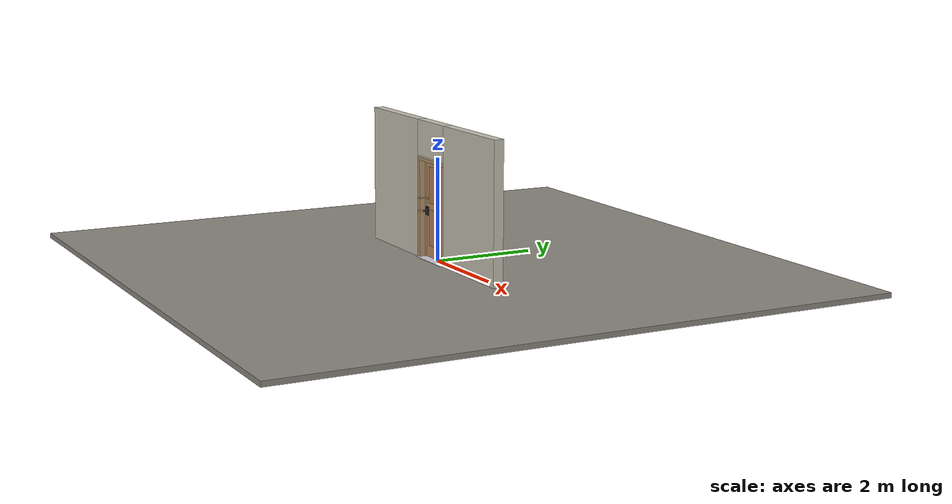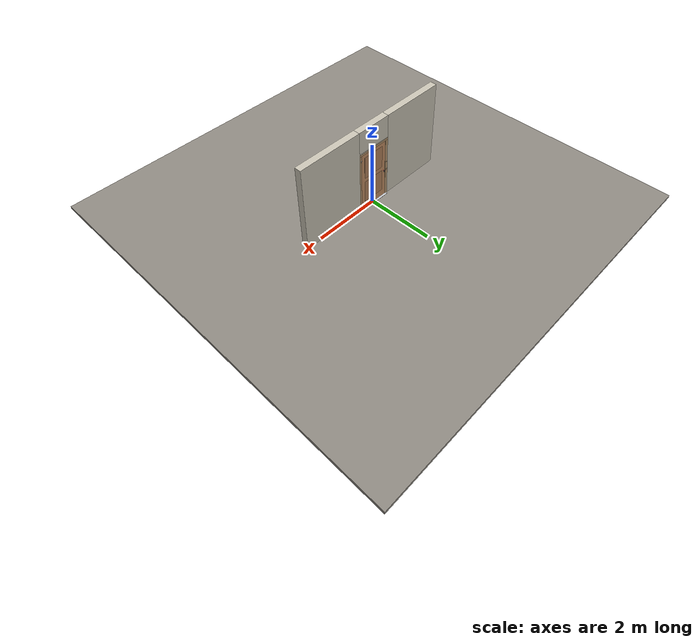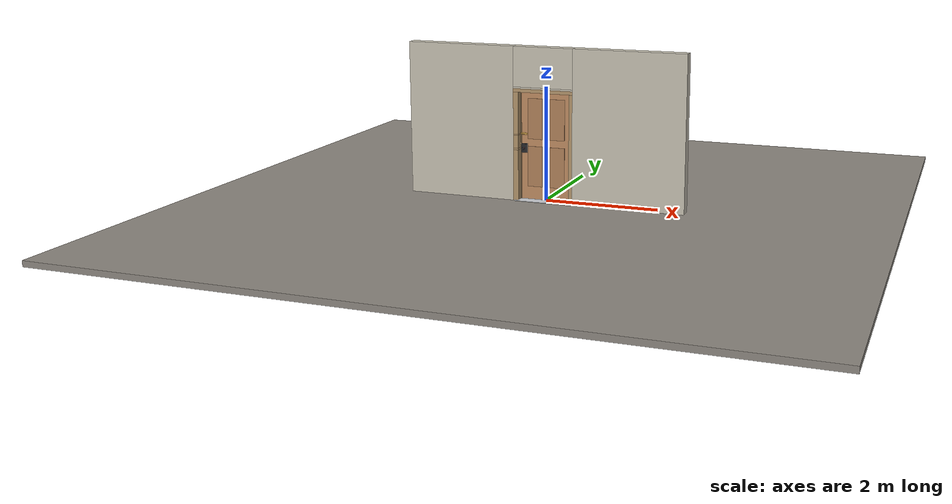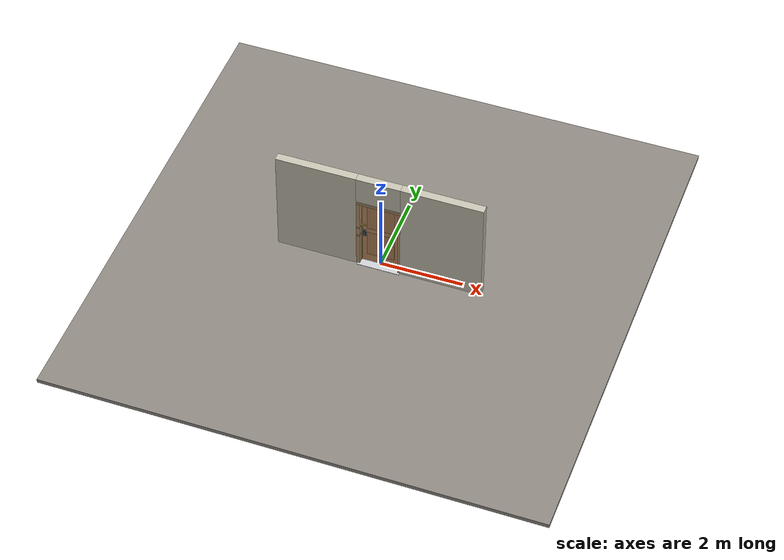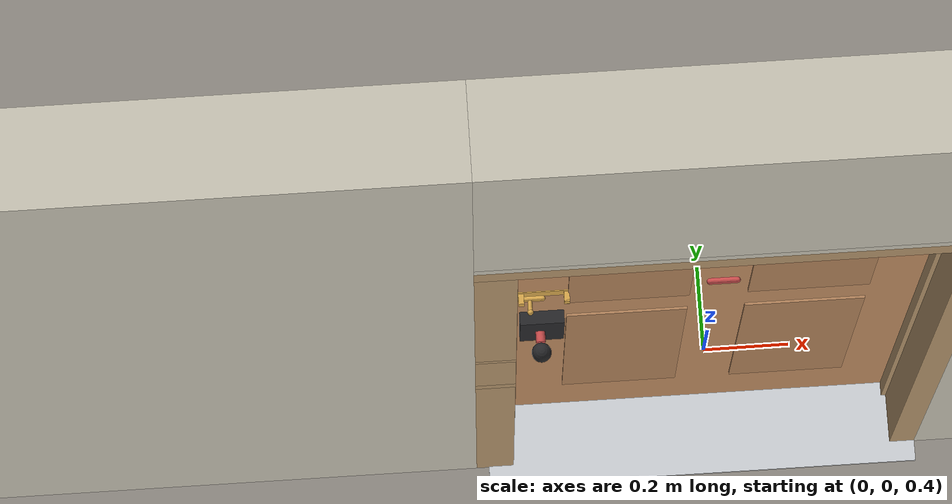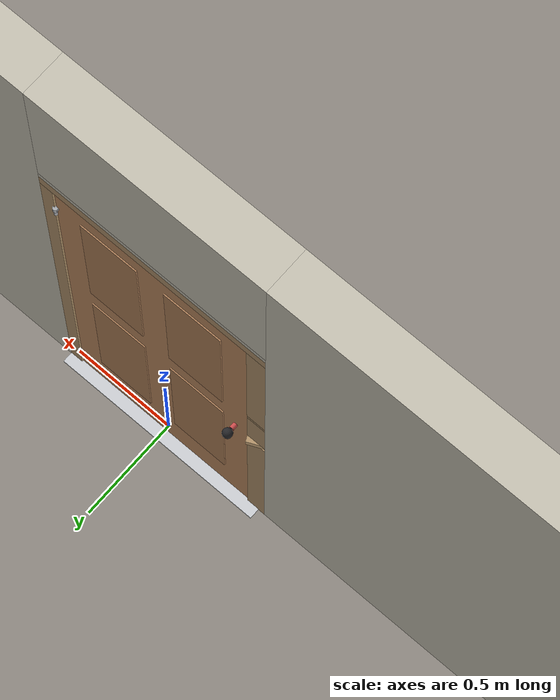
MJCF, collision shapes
<?xml version="1.0" ?>
<mujoco model="db0135_swing_single_full">
  <compiler angle="radian" meshdir="../../hardware" texturedir="../../textures" autolimits="true" inertiafromgeom="false"/>
  <option timestep="0.002" integrator="implicitfast" cone="elliptic" impratio="10" noslip_iterations="3">
    <flag multiccd="enable"/>
  </option>
  <size memory="16M"/>
  <default>
    <geom condim="4" solref="0.005 1" solimp="0.95 0.99 0.001"/>
    <joint solreflimit="0.005 1" solimplimit="0.95 0.99 0.001"/>
    <tendon solreflimit="0.005 1"/>
    <equality solref="0.002 1"/>
  </default>
  <visual>
    <headlight ambient="0.4 0.4 0.4" diffuse="0.7 0.7 0.7" specular="0.2 0.2 0.2"/>
    <quality shadowsize="4096"/>
    <map znear="0.01" zfar="60"/>
  </visual>
  <asset>
    <mesh name="knob_3926f4c53b" file="knob_3926f4c53b.obj"/>
    <mesh name="knocker_a8f2ce0ad7" file="knocker_a8f2ce0ad7.obj"/>
    <mesh name="strap_hinge_78d1bbb966" file="strap_hinge_78d1bbb966.obj"/>
    <material name="mat_floor" rgba="0.55 0.53 0.5 1" specular="0.2" shininess="0.15" reflectance="0"/>
    <material name="mat_wall" rgba="0.78 0.76 0.7 1" specular="0.2" shininess="0.1" reflectance="0"/>
    <material name="mat_leaf" rgba="0.75 0.55 0.38 1" specular="0.2" shininess="0.45" reflectance="0"/>
    <material name="mat_leaf_panel" rgba="0.69 0.506 0.35 1" specular="0.2" shininess="0.45" reflectance="0"/>
    <material name="mat_hinge" rgba="0.65 0.66 0.68 1" specular="0.74" shininess="0.5" reflectance="0.36"/>
    <material name="mat_op_cast_iron" rgba="0.15 0.15 0.16 1" specular="0.5" shininess="0.2" reflectance="0.2"/>
    <material name="mat_rim_case" rgba="0.15 0.15 0.16 1" specular="0.5" shininess="0.2" reflectance="0.2"/>
    <material name="mat_trim" rgba="0.85 0.66 0.3 1" specular="0.8" shininess="0.75" reflectance="0.4"/>
    <material name="mat_bolt" rgba="0.85 0.66 0.3 1" specular="0.8" shininess="0.75" reflectance="0.4"/>
    <material name="mat_op_brass" rgba="0.85 0.66 0.3 1" specular="0.8" shininess="0.75" reflectance="0.4"/>
    <material name="mat_frame" rgba="0.7 0.58 0.42 1" specular="0.2" shininess="0.5" reflectance="0"/>
    <material name="mat_threshold" rgba="0.8 0.81 0.83 1" specular="0.8" shininess="0.6" reflectance="0.4"/>
    <material name="mat_knocker" rgba="0.55 0.42 0.22 1" specular="0.74" shininess="0.45" reflectance="0.36"/>
    <texture name="skybox" type="skybox" builtin="gradient" rgb1="0.6 0.7 0.85" rgb2="0.9 0.92 0.95" width="256" height="256"/>
  </asset>
  <worldbody>
    <light name="sun" pos="1.5 -2.5 4" dir="-0.3 0.5 -0.8" directional="true" diffuse="0.8 0.8 0.8" specular="0.3 0.3 0.3" castshadow="true"/>
    <light name="fill" pos="-1.5 2.5 3" dir="0.3 -0.5 -0.7" directional="true" diffuse="0.35 0.35 0.4" castshadow="false"/>
    <camera name="robot_view" pos="0 -2.489438 1.633663" xyaxes="1 0 0 0 0.26963 0.962964" fovy="52"/>
    <camera name="far_view" pos="0 2.347437 1.633663" xyaxes="-1 0 0 0 -0.26963 0.962964" fovy="52"/>
    <camera name="iso" pos="-1.838012 -2.102488 2.020612" xyaxes="0.741536 -0.670913 0 0.242917 0.268487 0.932151" fovy="46"/>
    <camera name="detail_handle" pos="-0.2165 -0.8995 1.194" xyaxes="0.97561 0.219512 0 -0.070934 0.315262 0.94635" fovy="38"/>
    <geom name="floor" type="box" size="6 6 0.05" pos="0 0 -0.05" material="mat_floor" group="0" contype="1" conaffinity="1" friction="0.8 0.005 0.0001" density="2400"/>
    <geom name="wall_left" type="box" size="0.97475 0.1 1.35" pos="-1.52525 -0.071 1.35" material="mat_wall" group="0" contype="1" conaffinity="1" friction="0.6 0.005 0.0001" density="800"/>
    <geom name="wall_right" type="box" size="0.98975 0.1 1.35" pos="1.51025 -0.071 1.35" material="mat_wall" group="0" contype="1" conaffinity="1" friction="0.6 0.005 0.0001" density="800"/>
    <geom name="wall_header" type="box" size="0.5355 0.1 0.3485" pos="-0.015 -0.071 2.3515" material="mat_wall" group="0" contype="1" conaffinity="1" friction="0.6 0.005 0.0001" density="800"/>
    <geom name="hinge_pintle_0" type="cylinder" size="0.008 0.02" pos="0.4575 0.029 0.133" material="mat_hinge" group="1" contype="0" conaffinity="0" density="7850"/>
    <geom name="hinge_pintle_1" type="cylinder" size="0.008 0.02" pos="0.4575 0.029 1.733" material="mat_hinge" group="1" contype="0" conaffinity="0" density="7850"/>
    <geom name="leaf_aux_bolt_keeper_b" type="box" size="0.014 0.003 0.0005" pos="-0.46 -0.034 1.151" quat="0.5 0.5 0.5 0.5" material="mat_op_brass" group="1" contype="0" conaffinity="0" density="7800"/>
    <geom name="leaf_aux_bolt_keeper_l" type="box" size="0.003 0.01 0.0005" pos="-0.46 -0.045 1.164" quat="0.5 0.5 0.5 0.5" material="mat_op_brass" group="1" contype="0" conaffinity="0" density="7800"/>
    <geom name="leaf_aux_bolt_keeper_t" type="box" size="0.014 0.003 0.0005" pos="-0.46 -0.034 1.177" quat="0.5 0.5 0.5 0.5" material="mat_op_brass" group="1" contype="0" conaffinity="0" density="7800"/>
    <geom name="leaf_aux_bolt_keeper_r" type="box" size="0.003 0.01 0.0005" pos="-0.46 -0.023 1.164" quat="0.5 0.5 0.5 0.5" material="mat_op_brass" group="1" contype="0" conaffinity="0" density="7800"/>
    <geom name="jamb_hinge" type="box" size="0.03 0.1 0.9565" pos="0.4905 -0.071 0.9565" material="mat_frame" group="0" contype="1" conaffinity="1" friction="0.6 0.005 0.0001" density="750"/>
    <geom name="strike_914_wall_n" type="box" size="0.045 0.081575 0.0167" pos="-0.5055 -0.089425 0.914" material="mat_frame" group="0" contype="1" conaffinity="1" friction="0.6 0.005 0.0001" density="750"/>
    <geom name="strike_914_wall_p" type="box" size="0.045 0.008 0.0167" pos="-0.5055 0.01585 0.914" material="mat_frame" group="0" contype="1" conaffinity="1" friction="0.6 0.005 0.0001" density="750"/>
    <geom name="strike_914_ramp" type="box" size="0.045 0.01649 0.0167" pos="-0.508284 0.020157 0.914" quat="0.977148 0 0 0.212558" material="mat_frame" group="0" contype="1" conaffinity="1" friction="0.12 0.005 0.0001" density="750"/>
    <geom name="strike_914_back" type="box" size="0.03665 0.00785 0.0167" pos="-0.51385 0 0.914" material="mat_frame" group="0" contype="1" conaffinity="1" friction="0.6 0.005 0.0001" density="750"/>
    <geom name="strike_1164_wall_n" type="box" size="0.045 0.0645 0.01" pos="-0.5055 -0.1065 1.164" material="mat_frame" group="0" contype="1" conaffinity="1" friction="0.6 0.005 0.0001" density="750"/>
    <geom name="strike_1164_wall_p" type="box" size="0.045 0.0275 0.01" pos="-0.5055 0.0015 1.164" material="mat_frame" group="0" contype="1" conaffinity="1" friction="0.6 0.005 0.0001" density="750"/>
    <geom name="strike_1164_back" type="box" size="0.024 0.008 0.01" pos="-0.5265 -0.034 1.164" material="mat_frame" group="0" contype="1" conaffinity="1" friction="0.6 0.005 0.0001" density="750"/>
    <geom name="jamb_strike_0" type="box" size="0.045 0.1 0.44865" pos="-0.5055 -0.071 0.44865" material="mat_frame" group="0" contype="1" conaffinity="1" friction="0.6 0.005 0.0001" density="750"/>
    <geom name="jamb_strike_1" type="box" size="0.045 0.1 0.11165" pos="-0.5055 -0.071 1.04235" material="mat_frame" group="0" contype="1" conaffinity="1" friction="0.6 0.005 0.0001" density="750"/>
    <geom name="jamb_strike_2" type="box" size="0.045 0.1 0.3695" pos="-0.5055 -0.071 1.5435" material="mat_frame" group="0" contype="1" conaffinity="1" friction="0.6 0.005 0.0001" density="750"/>
    <geom name="jamb_head" type="box" size="0.5355 0.1 0.03" pos="-0.015 -0.071 1.943" material="mat_frame" group="0" contype="1" conaffinity="1" friction="0.6 0.005 0.0001" density="750"/>
    <geom name="head_stud" type="box" size="0.5355 0.1 0.015" pos="-0.015 -0.071 1.988" material="mat_wall" group="0" contype="1" conaffinity="1" friction="0.6 0.005 0.0001" density="500"/>
    <geom name="stop_hinge" type="box" size="0.0055 0.016 0.9565" pos="0.455 -0.0385 0.9565" material="mat_frame" group="0" contype="1" conaffinity="1" friction="0.6 0.005 0.0001" density="750"/>
    <geom name="stop_strike" type="box" size="0.0055 0.016 0.571" pos="-0.455 -0.0385 0.571" material="mat_frame" group="0" contype="1" conaffinity="1" friction="0.6 0.005 0.0001" density="750"/>
    <geom name="stop_strike_1" type="box" size="0.0055 0.016 0.3635" pos="-0.455 -0.0385 1.5495" material="mat_frame" group="0" contype="1" conaffinity="1" friction="0.6 0.005 0.0001" density="750"/>
    <geom name="stop_head" type="box" size="0.4605 0.016 0.0055" pos="0 -0.0385 1.9075" material="mat_frame" group="0" contype="1" conaffinity="1" friction="0.6 0.005 0.0001" density="750"/>
    <geom name="threshold" type="box" size="0.5205 0.15 0.004" pos="0 -0.071 0.004" material="mat_threshold" group="0" contype="1" conaffinity="1" friction="0.6 0.005 0.0001" density="2700"/>
    <geom name="hinge_pintle_0_strap_0" type="box" size="0.0064 0.02225 0.016" pos="0.4575 -0.00075 0.133" material="mat_hinge" group="1" contype="0" conaffinity="0" density="7850"/>
    <geom name="hinge_pintle_1_strap_0" type="box" size="0.0064 0.02225 0.016" pos="0.4575 -0.00075 1.733" material="mat_hinge" group="1" contype="0" conaffinity="0" density="7850"/>
    <site name="approach_point" pos="0 -1.5 0" quat="1 0 0 0" size="0.05" rgba="0.2 0.9 0.2 0.5" group="4"/>
    <site name="goal_point" pos="0 1.5 0" quat="1 0 0 0" size="0.05" rgba="0.2 0.9 0.2 0.5" group="4"/>
    <site name="door_plane_center" pos="0 0 0.9565" quat="1 0 0 0" size="0.02" rgba="0.2 0.9 0.2 0.5" group="4"/>
    <body name="leaf" pos="0.4605 0 0">
      <inertial pos="-0.457637 0.000044 0.958339" mass="40.443548" quat="0.497517 0.503045 -0.496894 0.502513" diaginertia="3.013329893 12.440105045 15.436080666"/>
      <joint name="leaf_hinge" type="hinge" axis="0 0 -1" pos="-0.003 0.029 0" limited="true" range="0 1.745329" damping="0.289473" frictionloss="4.001938" armature="0.02"/>
      <geom name="leaf_slab" type="box" size="0.457 0.022 0.95" pos="-0.46 0 0.959" material="mat_leaf" group="0" contype="1" conaffinity="1" friction="0.35 0.005 0.0001" density="1"/>
      <geom name="leaf_panel_0_n" type="box" size="0.13573 0.003 0.3565" pos="-0.25927 -0.025 0.5945" material="mat_leaf_panel" group="1" contype="0" conaffinity="0" density="1"/>
      <geom name="leaf_panel_0_p" type="box" size="0.13573 0.003 0.3565" pos="-0.25927 0.025 0.5945" material="mat_leaf_panel" group="1" contype="0" conaffinity="0" density="1"/>
      <geom name="leaf_panel_1_n" type="box" size="0.13573 0.003 0.3565" pos="-0.66073 -0.025 0.5945" material="mat_leaf_panel" group="1" contype="0" conaffinity="0" density="1"/>
      <geom name="leaf_panel_1_p" type="box" size="0.13573 0.003 0.3565" pos="-0.66073 0.025 0.5945" material="mat_leaf_panel" group="1" contype="0" conaffinity="0" density="1"/>
      <geom name="leaf_panel_2_n" type="box" size="0.13573 0.003 0.3565" pos="-0.25927 -0.025 1.4375" material="mat_leaf_panel" group="1" contype="0" conaffinity="0" density="1"/>
      <geom name="leaf_panel_2_p" type="box" size="0.13573 0.003 0.3565" pos="-0.25927 0.025 1.4375" material="mat_leaf_panel" group="1" contype="0" conaffinity="0" density="1"/>
      <geom name="leaf_panel_3_n" type="box" size="0.13573 0.003 0.3565" pos="-0.66073 -0.025 1.4375" material="mat_leaf_panel" group="1" contype="0" conaffinity="0" density="1"/>
      <geom name="leaf_panel_3_p" type="box" size="0.13573 0.003 0.3565" pos="-0.66073 0.025 1.4375" material="mat_leaf_panel" group="1" contype="0" conaffinity="0" density="1"/>
      <geom name="hinge_strap_0" type="mesh" mesh="strap_hinge_78d1bbb966" pos="-0.003 0.025 0.159" quat="0 0 0 1" material="mat_hinge" group="1" contype="0" conaffinity="0" density="7850"/>
      <geom name="hinge_strap_eye_0" type="cylinder" size="0.011 0.012" pos="-0.003 0.029 0.159" material="mat_hinge" group="1" contype="0" conaffinity="0" density="7850"/>
      <geom name="hinge_strap_neck_0" type="box" size="0.012 0.006 0.006" pos="-0.003 0.027 0.159" material="mat_hinge" group="1" contype="0" conaffinity="0" density="7850"/>
      <geom name="hinge_strap_1" type="mesh" mesh="strap_hinge_78d1bbb966" pos="-0.003 0.025 1.759" quat="0 0 0 1" material="mat_hinge" group="1" contype="0" conaffinity="0" density="7850"/>
      <geom name="hinge_strap_eye_1" type="cylinder" size="0.011 0.012" pos="-0.003 0.029 1.759" material="mat_hinge" group="1" contype="0" conaffinity="0" density="7850"/>
      <geom name="hinge_strap_neck_1" type="box" size="0.012 0.006 0.006" pos="-0.003 0.027 1.759" material="mat_hinge" group="1" contype="0" conaffinity="0" density="7850"/>
      <geom name="leaf_handle_rim_case" type="box" size="0.05 0.015 0.08" pos="-0.853 -0.037 0.914" material="mat_rim_case" group="0" contype="1" conaffinity="1" friction="0.6 0.005 0.0001" density="2500"/>
      <geom name="leaf_latch_bolt_faceplate" type="box" size="0.0006 0.01235 0.0267" pos="-0.9164 0 0.914" material="mat_bolt" group="1" contype="0" conaffinity="0" density="8500"/>
      <geom name="leaf_aux_bolt_plate" type="box" size="0.0595 0.019 0.001" pos="-0.8495 -0.023 1.164" quat="0 0 -0.707107 0.707107" material="mat_op_brass" group="1" contype="0" conaffinity="0" density="7800"/>
      <geom name="leaf_aux_bolt_guide_0_leg_n" type="box" size="0.006 0.002 0.0125" pos="-0.901 -0.0345 1.175" quat="0 0 -0.707107 0.707107" material="mat_op_brass" group="1" contype="0" conaffinity="0" density="7800"/>
      <geom name="leaf_aux_bolt_guide_0_leg_p" type="box" size="0.006 0.002 0.0125" pos="-0.901 -0.0345 1.153" quat="0 0 -0.707107 0.707107" material="mat_op_brass" group="1" contype="0" conaffinity="0" density="7800"/>
      <geom name="leaf_aux_bolt_guide_0_bridge" type="box" size="0.006 0.013 0.002" pos="-0.901 -0.045 1.164" quat="0 0 -0.707107 0.707107" material="mat_op_brass" group="1" contype="0" conaffinity="0" density="7800"/>
      <geom name="leaf_aux_bolt_guide_1_leg_n" type="box" size="0.006 0.002 0.0125" pos="-0.8 -0.0345 1.175" quat="0 0 -0.707107 0.707107" material="mat_op_brass" group="1" contype="0" conaffinity="0" density="7800"/>
      <geom name="leaf_aux_bolt_guide_1_leg_p" type="box" size="0.006 0.002 0.0125" pos="-0.8 -0.0345 1.153" quat="0 0 -0.707107 0.707107" material="mat_op_brass" group="1" contype="0" conaffinity="0" density="7800"/>
      <geom name="leaf_aux_bolt_guide_1_bridge" type="box" size="0.006 0.013 0.002" pos="-0.8 -0.045 1.164" quat="0 0 -0.707107 0.707107" material="mat_op_brass" group="1" contype="0" conaffinity="0" density="7800"/>
      <site name="leaf_edge_mid" pos="-0.917 0 0.95" quat="1 0 0 0" size="0.02" rgba="0.2 0.9 0.2 0.5" group="4"/>
      <body name="leaf_handle" pos="-0.857 0 0.914">
        <inertial pos="0 -0.013365 0" mass="0.977592" quat="0.5 0.5 0.5 0.5" diaginertia="0.000192203 0.005356868 0.005356868"/>
        <joint name="leaf_handle_hinge" type="hinge" axis="0 1 0" limited="true" range="0 0.85" damping="0.156401" frictionloss="0.052" stiffness="0.6" springref="-0.5" armature="0.01"/>
        <geom name="leaf_handle_spindle" type="cylinder" size="0.006 0.06" pos="0 0 0" quat="0.707107 -0.707107 0 0" material="mat_op_cast_iron" group="1" contype="0" conaffinity="0" density="7850"/>
        <geom name="leaf_handle_knob_n" type="mesh" mesh="knob_3926f4c53b" pos="0 -0.052 0" quat="0 0 -0.707107 0.707107" material="mat_op_cast_iron" group="1" contype="0" conaffinity="0" density="3000"/>
        <geom name="leaf_handle_knob_col_n" type="sphere" size="0.0225" pos="0 -0.0995 0" material="mat_op_cast_iron" group="0" contype="1" conaffinity="1" friction="0.9 0.01 0.0001" density="3000"/>
        <geom name="leaf_handle_knob_neck_n" type="cylinder" size="0.011 0.012" pos="0 -0.064 0" quat="0.707107 -0.707107 0 0" material="mat_op_cast_iron" group="3" contype="1" conaffinity="1" rgba="0.8 0.3 0.3 0.25" friction="0.6 0.005 0.0001" density="3000"/>
        <geom name="leaf_handle_knob_p" type="mesh" mesh="knob_3926f4c53b" pos="0 0.022 0" quat="0 0 0.707107 0.707107" material="mat_op_cast_iron" group="1" contype="0" conaffinity="0" density="3000"/>
        <geom name="leaf_handle_knob_col_p" type="sphere" size="0.0225" pos="0 0.0695 0" material="mat_op_cast_iron" group="0" contype="1" conaffinity="1" friction="0.9 0.01 0.0001" density="3000"/>
        <geom name="leaf_handle_knob_neck_p" type="cylinder" size="0.011 0.012" pos="0 0.034 0" quat="0.707107 -0.707107 0 0" material="mat_op_cast_iron" group="3" contype="1" conaffinity="1" rgba="0.8 0.3 0.3 0.25" friction="0.6 0.005 0.0001" density="3000"/>
        <site name="leaf_handle_grip_n" pos="0 -0.0995 0" quat="1 0 0 0" size="0.012" rgba="0.2 0.9 0.2 0.5" group="4"/>
        <site name="leaf_handle_grip_p" pos="0 0.0695 0" quat="1 0 0 0" size="0.012" rgba="0.2 0.9 0.2 0.5" group="4"/>
      </body>
      <body name="leaf_latch_bolt" pos="-0.917 0 0.914">
        <inertial pos="0.00865 0 0" mass="0.041419" quat="0.92388 0.382683 0 0" diaginertia="0.000000798 0.000005598 0.000005598"/>
        <joint name="leaf_latch_bolt_slide" type="slide" axis="1 0 0" limited="true" range="0 0.0127" damping="2" frictionloss="0.3" stiffness="300" springref="-0.008333" armature="0.1"/>
        <geom name="leaf_latch_bolt_capsule" type="capsule" size="0.00635 0.015" pos="0.00865 0 0" quat="0.707107 0 -0.707107 0" material="mat_bolt" group="0" contype="1" conaffinity="1" friction="0.2 0.005 0.0001" density="8500"/>
      </body>
      <body name="leaf_aux_bolt" pos="-0.917 -0.034 1.164">
        <inertial pos="0.023563 -0.00492 0" mass="0.111784" quat="0.998595 0 0 -0.05299" diaginertia="0.000012212 0.000071985 0.000082309"/>
        <joint name="leaf_aux_bolt_slide" type="slide" axis="1 0 0" limited="true" range="0 0.045" damping="1" frictionloss="1" armature="0.1"/>
        <geom name="leaf_aux_bolt_rod" type="capsule" size="0.006 0.044" pos="0.02 0 0" quat="0.707107 0 -0.707107 0" material="mat_op_brass" group="0" contype="1" conaffinity="1" friction="0.6 0.005 0.0001" density="7850"/>
        <geom name="leaf_aux_bolt_knob" type="capsule" size="0.005 0.01" pos="0.035 -0.015 0" quat="0.707107 0.707107 0 0" material="mat_op_brass" group="0" contype="1" conaffinity="1" friction="0.6 0.005 0.0001" density="7850"/>
        <geom name="leaf_aux_bolt_knob_end" type="sphere" size="0.00675" pos="0.035 -0.03 0" material="mat_op_brass" group="1" contype="0" conaffinity="0" density="7850"/>
        <site name="leaf_aux_bolt_grip" pos="0.035 -0.034 0" quat="1 0 0 0" size="0.012" rgba="0.2 0.9 0.2 0.5" group="4"/>
      </body>
      <body name="knocker" pos="-0.46 -0.022 1.289">
        <inertial pos="0 -0.010216 0.001203" mass="0.814961" quat="0.49606 0.50391 0.50391 -0.49606" diaginertia="0.000611431 0.001116108 0.001534609"/>
        <joint name="knocker_hinge" type="hinge" axis="-1 0 0" pos="0 0 0.055" limited="true" range="0 0.6" damping="0.005" armature="0.002"/>
        <geom name="knocker_mesh" type="mesh" mesh="knocker_a8f2ce0ad7" pos="0 0 0" quat="0 0 -0.707107 0.707107" material="mat_knocker" group="2" contype="0" conaffinity="0" density="8500"/>
        <geom name="knocker_col" type="capsule" size="0.007 0.03" pos="0 -0.025 -0.01" quat="0.707107 0 0.707107 0" material="mat_knocker" group="3" contype="1" conaffinity="1" rgba="0.8 0.3 0.3 0.25" friction="0.6 0.005 0.0001" density="8500"/>
      </body>
    </body>
  </worldbody>
  <tendon>
    <fixed name="leaf_latch_bolt_coupling" limited="true" range="0 10">
      <joint joint="leaf_latch_bolt_slide" coef="1"/>
      <joint joint="leaf_handle_hinge" coef="-0.016494"/>
    </fixed>
  </tendon>
  <sensor>
    <jointpos name="leaf_hinge_pos" joint="leaf_hinge"/>
    <jointvel name="leaf_hinge_vel" joint="leaf_hinge"/>
    <jointpos name="leaf_handle_hinge_pos" joint="leaf_handle_hinge"/>
    <jointvel name="leaf_handle_hinge_vel" joint="leaf_handle_hinge"/>
    <jointpos name="leaf_latch_bolt_slide_pos" joint="leaf_latch_bolt_slide"/>
    <jointvel name="leaf_latch_bolt_slide_vel" joint="leaf_latch_bolt_slide"/>
    <jointpos name="leaf_aux_bolt_slide_pos" joint="leaf_aux_bolt_slide"/>
    <jointvel name="leaf_aux_bolt_slide_vel" joint="leaf_aux_bolt_slide"/>
  </sensor>
</mujoco>
